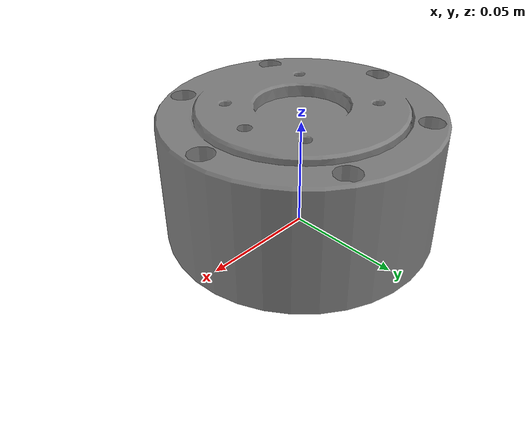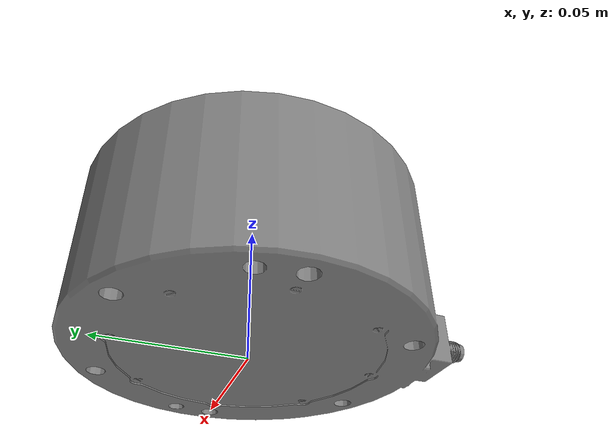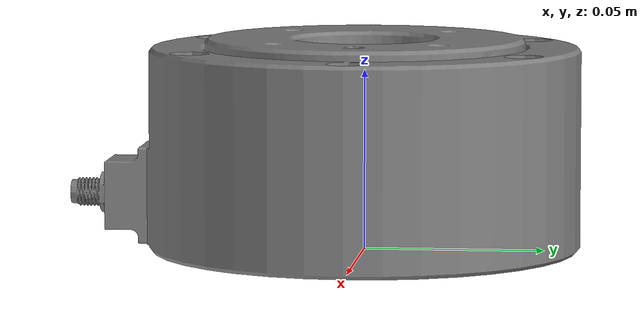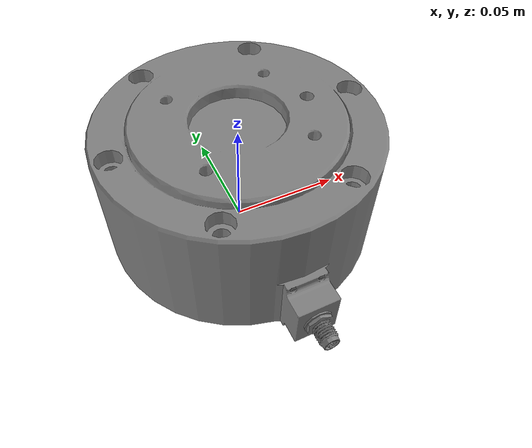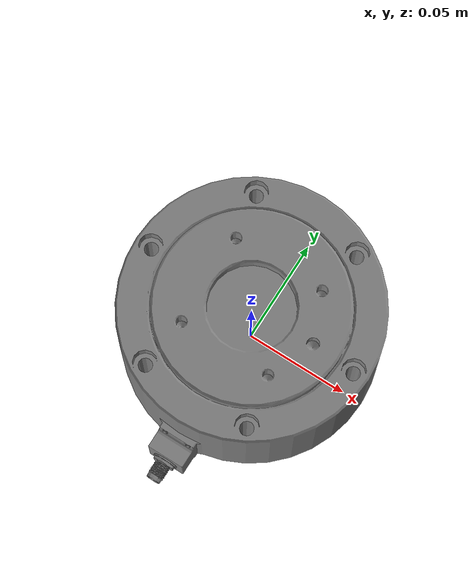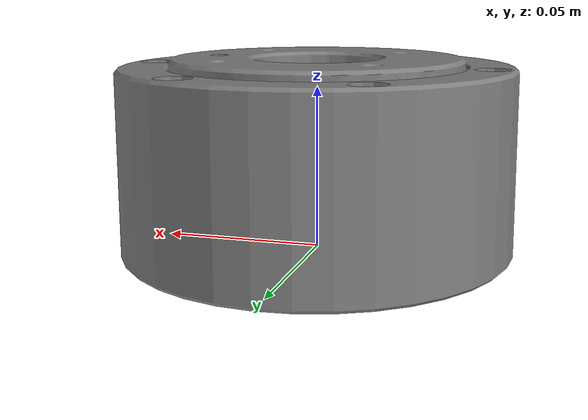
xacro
<?xml version="1.0"?>
<robot xmlns:xacro="http://wiki.ros.org/xacro" name="bota_ft_sensor_mounted">

    <!-- //////// Robot description ////////// -->

    <!-- This is a place holder for the robot link onto which the sensor is attached-->
    <link name="robot_mounting_link" />

    <!-- //////// Bota FT Sensor Links and Joint ////////// -->

    <!-- Define the prefix for the sensor link name -->
    <xacro:arg name="bota_ft_sensor_link_name" default="bota_ft_sensor" />

    <!-- Include and use the sensor links and joints xacro from the bota_driver package || UNCOMMENT THE ONE IN USE -->

    <!-- SensONE GEN0 Serial -->

    <!-- SensONE GEN0 EtherCAT -->

    <!-- Rokubi GEN0 Serial -->

    <!-- Rokubi GEN0 EtherCAT -->

    <!-- Medusa GEN0 Serial -->

    <!-- Medusa GEN0 EtherCAT -->

    <!-- MiniONE Pro GEN0 Serial -->

    <!-- MiniONE Pro GEN0 EtherCAT -->

    <!-- LaxONE GEN0 Serial -->

    <!-- LaxONE GEN0 EtherCAT -->

    <!-- MegaONE GEN0 Serial -->
    <xacro:include filename="$(find bota_driver)/urdf/BFT_MEGS_SER_M8.urdf.xacro" />
    <xacro:BFT_MEGS_SER_M8 prefix="$(arg bota_ft_sensor_link_name)" />

    <!-- MegaONE GEN0 EtherCAT -->

    <!-- Kinova Gen3 -->

    <!-- //////// Connection Robot with Bota FT Sensor ////////// -->

    <!-- Define the mounting joint for the sensor -->
    <joint name="robot_mounting_link_to_bota_ft_sensor" type="fixed">
        <parent link="robot_mounting_link" />
        <child link = "$(arg bota_ft_sensor_link_name)_mounting" />
        <origin xyz="0.0 0.0 0.0" rpy="0.0 0.0 0.0" />
    </joint>

</robot>

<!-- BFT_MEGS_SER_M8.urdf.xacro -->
<robot xmlns:xacro="http://wiki.ros.org/xacro">
  <xacro:macro name="BFT_MEGS_SER_M8" params="prefix">

    <link
      name="${prefix}_mounting">
      <inertial>
        <origin
          xyz="-9.9626E-09 -0.00076435 0.024718"
          rpy="0 0 0" />
        <mass
          value="0.98457" />
        <inertia
          ixx="0.0013943"
          ixy="3.1552E-10"
          ixz="-2.0448E-11"
          iyy="0.0013945"
          iyz="8.0585E-07"
          izz="0.0023427" />
      </inertial>
      <visual>
        <origin
          xyz="0 0 0"
          rpy="0 0 0" />
        <geometry>
          <mesh
            filename="package://bota_driver/meshes/BFT_MEGS_M8/mounting.STL" />
        </geometry>
        <material name="">
          <color rgba="0.50196 0.50196 0.50196 1" />
        </material>
      </visual>
      <collision>
        <origin
          xyz="0 0 0.0295"
          rpy="0 0 0" />
        <geometry>
          <cylinder radius="0.060" length="0.059"/>
        </geometry>
      </collision>
      <collision>
        <origin
          xyz="0 -0.065 0.015"
          rpy="0 0 0" />
        <geometry>
          <box size="0.018 0.015 0.027" />
        </geometry>
      </collision>
      <collision>
        <origin
          xyz="0 -0.085 0.015"
          rpy="1.57 0 0" />
        <geometry>
          <cylinder radius="0.0065" length="0.032"/>
        </geometry>
      </collision>
    </link>

    <link
      name="${prefix}_wrench">
      <inertial>
        <origin
          xyz="-4.35933E-05 -7.88886E-06 -0.01550"
          rpy="0 0 0" />
        <mass
          value="0.378969163715419" />
        <inertia
          ixx="0.000211209280723679"
          ixy="1.30351293568812E-10"
          ixz="2.01303352334353E-07"
          iyy="0.000210583550455704"
          iyz="-5.63411860645026E-08"
          izz="0.00034505338301979" />
      </inertial>
    </link>

    <joint
      name="${prefix}_mounting_to_wrench"
      type="fixed">
      <origin
        xyz="0 0 0.059"
        rpy="0 0 0" />
      <parent
        link="${prefix}_mounting" />
      <child
        link="${prefix}_wrench" />
      <axis
        xyz="0 0 0" />
    </joint>

  </xacro:macro>
</robot>
